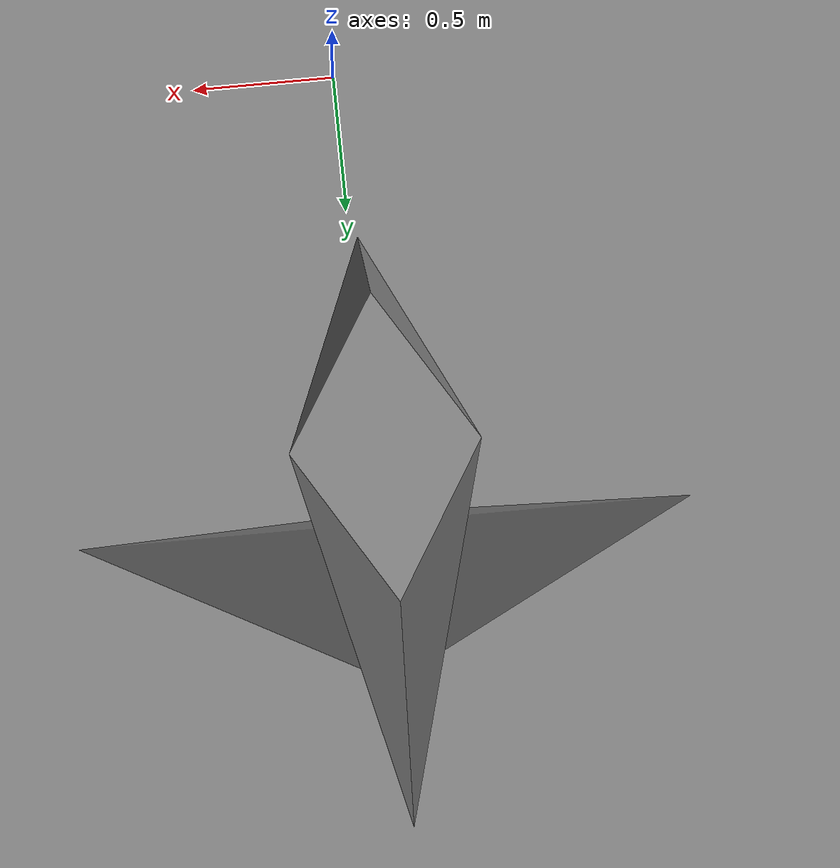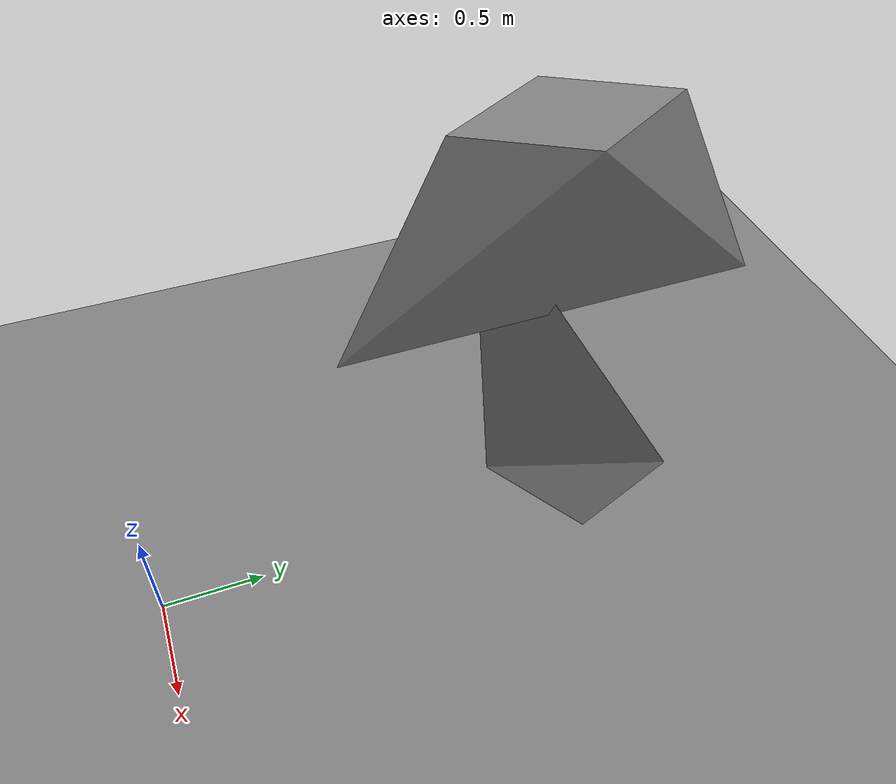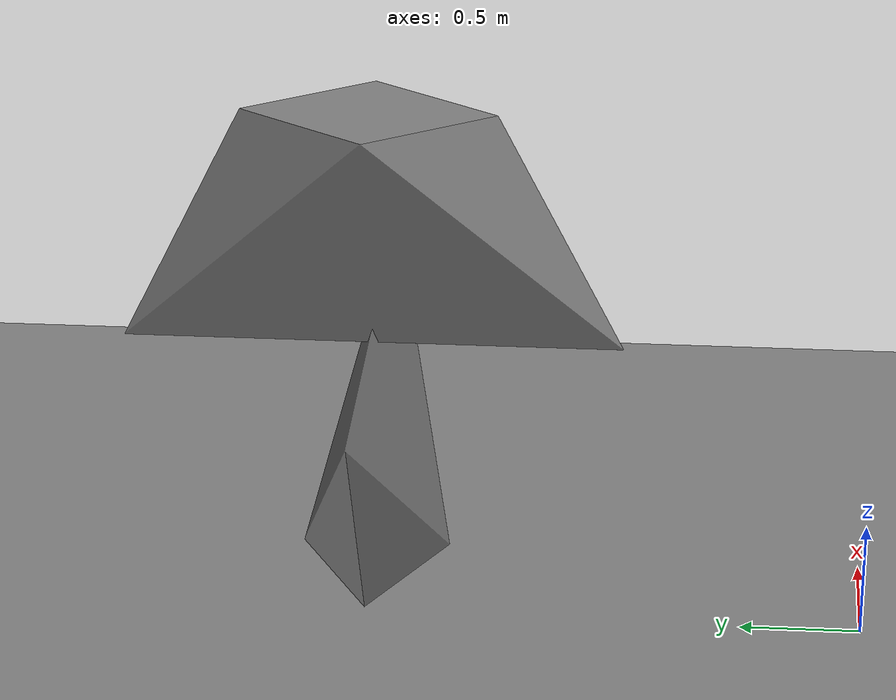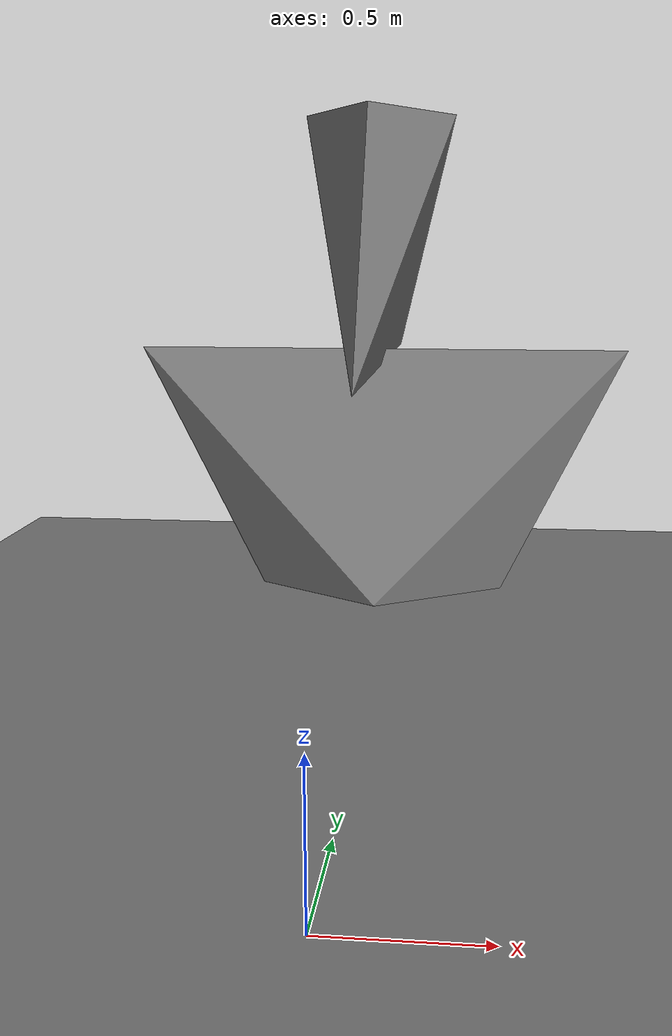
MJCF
<mujoco model="freejoint mujoco warp scene">

  <visual>
    <headlight diffuse="0.6 0.6 0.6" ambient="0.3 0.3 0.3" specular="0 0 0"/>
    <rgba haze="0.15 0.25 0.35 1"/>
    <global azimuth="120" elevation="-20"/>
  </visual>

  <asset>
    <texture type="skybox" builtin="gradient" rgb1="0.3 0.5 0.7" rgb2="0 0 0" width="512" height="3072"/>
    <texture type="2d" name="groundplane" builtin="checker" mark="edge" rgb1="0.2 0.3 0.4" rgb2="0.1 0.2 0.3"
      markrgb="0.8 0.8 0.8" width="300" height="300"/>
    <material name="groundplane" texture="groundplane" texuniform="true" texrepeat="5 5" reflectance="0.2"/>
    <mesh name="poly"
            vertex="0.3 0 0  0 0.5 0  -0.3 0 0  0 -0.5 0  0 -1 1  0 1 1"
            face="0 1 5  0 5 4  0 4 3  3 4 2  2 4 5  1 2 5  0 2 1  0 3 2"/>
  </asset>

          <worldbody>
          <light pos="0 0 1.5" dir="0 0 -1" directional="true"/>
           <geom name="floor" size="0 0 0.05" type="plane" />
            <body pos="0.0 2.0 0.35" euler="0 0 90">
              <freejoint/>
              <geom size="0.2 0.2 0.2" type="mesh" mesh="poly"/>
            </body>
            <body pos="0.0 2.0 2.281" euler="180 0 0">
              <freejoint/>
              <geom size="0.2 0.2 0.2" type="mesh" mesh="poly"/>
            </body>
          </worldbody>
</mujoco>
